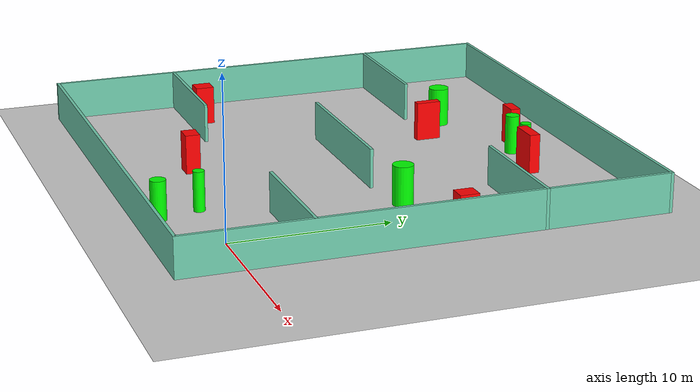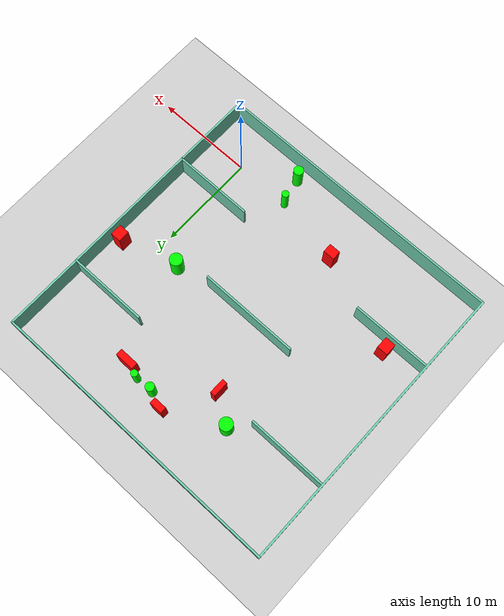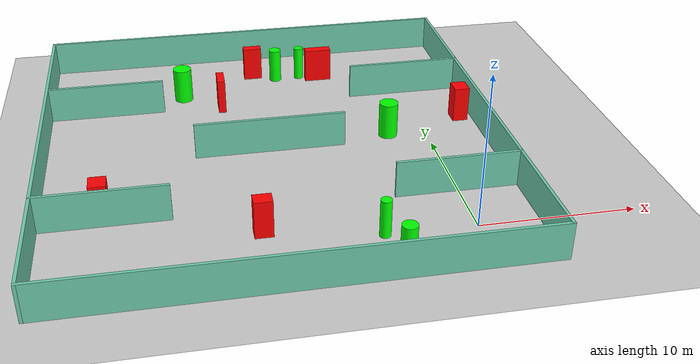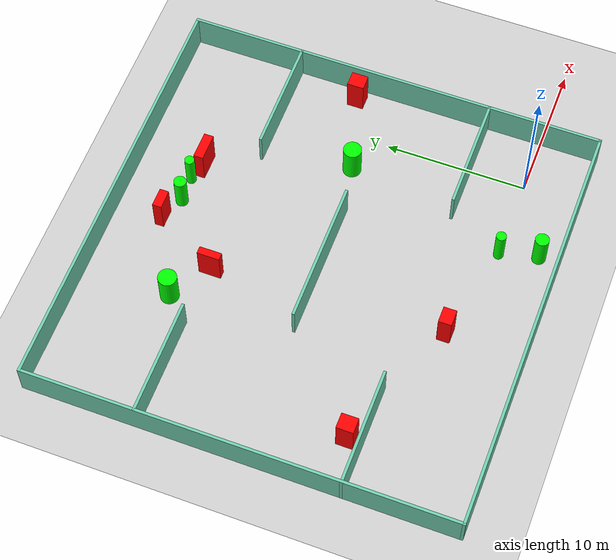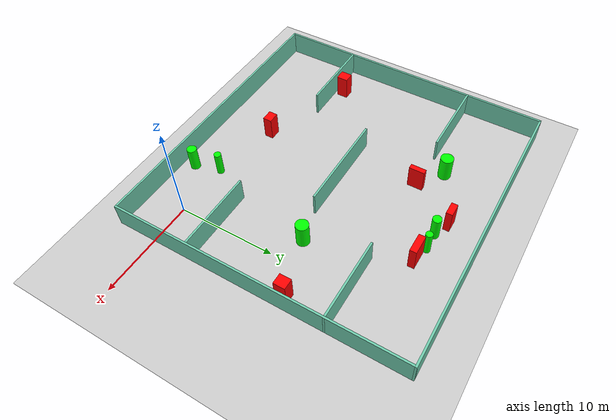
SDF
<sdf version="1.7">
 <world name="default">
  <light name="sun" type="directional">
   <pose>0 0 10 0 -0 0</pose>
   <diffuse>0.8 0.8 0.8 1</diffuse>
   <specular>0.2 0.2 0.2 1</specular>
   <attenuation>
    <range>1000</range>
    <constant>0.9</constant>
    <linear>0.01</linear>
    <quadratic>0.001</quadratic>
   </attenuation>
   <direction>-0.5 0.1 -0.9</direction>
   <spot><inner_angle>0</inner_angle><outer_angle>0</outer_angle><falloff>0</falloff></spot>
  </light>
  <model name="ground_plane">
   <static>1</static>
   <link name="link">
    <collision name="collision">
     <geometry><plane><normal>0 0 1</normal><size>100 100</size></plane></geometry>
     <surface>
      <contact><collide_bitmask>65535</collide_bitmask></contact>
      <friction><ode><mu>100</mu><mu2>50</mu2></ode></friction>
     </surface>
    </collision>
    <visual name="visual">
     <cast_shadows>0</cast_shadows>
     <geometry><plane><normal>0 0 1</normal><size>100 100</size></plane></geometry>
     <material>
      <script><uri>file://media/materials/scripts/gazebo.material</uri><name>Gazebo/Grey</name></script>
     </material>
    </visual>
   </link>
  </model>
  <gravity>0 0 -9.8</gravity>
  <magnetic_field>6e-06 2.3e-05 -4.2e-05</magnetic_field>
  <atmosphere type="adiabatic"/>
  <physics type="ode">
   <max_step_size>0.001</max_step_size>
   <real_time_factor>1</real_time_factor>
   <real_time_update_rate>1000</real_time_update_rate>
  </physics>
  <scene><ambient>0.4 0.4 0.4 1</ambient><background>0.7 0.7 0.7 1</background><shadows>1</shadows></scene>
  <spherical_coordinates>
   <surface_model>EARTH_WGS84</surface_model>
   <latitude_deg>0</latitude_deg>
   <longitude_deg>0</longitude_deg>
   <elevation>0</elevation>
   <heading_deg>0</heading_deg>
  </spherical_coordinates>
  <model name="my_base_walls">
   <link name="Wall_10">
    <collision name="Wall_10_Collision">
     <geometry><box><size>8.2 0.2 2.5</size></box></geometry>
     <pose>0 0 1.25 0 -0 0</pose>
    </collision>
    <visual name="Wall_10_Visual">
     <pose>0 0 1.25 0 -0 0</pose>
     <geometry><box><size>8.2 0.2 2.5</size></box></geometry>
     <material>
      <script><uri>file://media/materials/scripts/gazebo.material</uri><name>Gazebo/Grey</name></script>
      <ambient>0.435294 0.796078 0.67451 1</ambient>
     </material>
     <meta><layer>0</layer></meta>
    </visual>
    <pose>-11 -7 0 0 -0 0</pose>
   </link>
   <link name="Wall_12">
    <collision name="Wall_12_Collision">
     <geometry><box><size>8.2 0.2 2.5</size></box></geometry>
     <pose>0 0 1.25 0 -0 0</pose>
    </collision>
    <visual name="Wall_12_Visual">
     <pose>0 0 1.25 0 -0 0</pose>
     <geometry><box><size>8.2 0.2 2.5</size></box></geometry>
     <material>
      <script><uri>file://media/materials/scripts/gazebo.material</uri><name>Gazebo/Grey</name></script>
      <ambient>0.435294 0.796078 0.67451 1</ambient>
     </material>
     <meta><layer>0</layer></meta>
    </visual>
    <pose>-11 7 0 0 -0 0</pose>
   </link>
   <link name="Wall_14">
    <collision name="Wall_14_Collision">
     <geometry><box><size>8.2 0.2 2.5</size></box></geometry>
     <pose>0 0 1.25 0 -0 0</pose>
    </collision>
    <visual name="Wall_14_Visual">
     <pose>0 0 1.25 0 -0 0</pose>
     <geometry><box><size>8.2 0.2 2.5</size></box></geometry>
     <material>
      <script><uri>file://media/materials/scripts/gazebo.material</uri><name>Gazebo/Grey</name></script>
      <ambient>0.435294 0.796078 0.67451 1</ambient>
     </material>
     <meta><layer>0</layer></meta>
    </visual>
    <pose>11 7 0 0 -0 3.14159</pose>
   </link>
   <link name="Wall_16">
    <collision name="Wall_16_Collision">
     <geometry><box><size>10.2 0.2 2.5</size></box></geometry>
     <pose>0 0 1.25 0 -0 0</pose>
    </collision>
    <visual name="Wall_16_Visual">
     <pose>0 0 1.25 0 -0 0</pose>
     <geometry><box><size>10.2 0.2 2.5</size></box></geometry>
     <material>
      <script><uri>file://media/materials/scripts/gazebo.material</uri><name>Gazebo/Grey</name></script>
      <ambient>0.435294 0.796078 0.67451 1</ambient>
     </material>
     <meta><layer>0</layer></meta>
    </visual>
    <pose>0 0 0 0 -0 3.14159</pose>
   </link>
   <link name="Wall_2">
    <collision name="Wall_2_Collision">
     <geometry><box><size>30.2 0.2 2.5</size></box></geometry>
     <pose>0 0 1.25 0 -0 0</pose>
    </collision>
    <visual name="Wall_2_Visual">
     <pose>0 0 1.25 0 -0 0</pose>
     <geometry><box><size>30.2 0.2 2.5</size></box></geometry>
     <material>
      <script><uri>file://media/materials/scripts/gazebo.material</uri><name>Gazebo/Grey</name></script>
      <ambient>0.435294 0.796078 0.67451 1</ambient>
     </material>
     <meta><layer>0</layer></meta>
    </visual>
    <pose>0 -15 0 0 -0 3.14159</pose>
   </link>
   <link name="Wall_3">
    <collision name="Wall_3_Collision">
     <geometry><box><size>30.2 0.2 2.5</size></box></geometry>
     <pose>0 0 1.25 0 -0 0</pose>
    </collision>
    <visual name="Wall_3_Visual">
     <pose>0 0 1.25 0 -0 0</pose>
     <geometry><box><size>30.2 0.2 2.5</size></box></geometry>
     <material>
      <script><uri>file://media/materials/scripts/gazebo.material</uri><name>Gazebo/Grey</name></script>
      <ambient>0.435294 0.796078 0.67451 1</ambient>
     </material>
     <meta><layer>0</layer></meta>
    </visual>
    <pose>-15 0 0 0 -0 1.5708</pose>
   </link>
   <link name="Wall_4">
    <collision name="Wall_4_Collision">
     <geometry><box><size>30.2 0.2 2.5</size></box></geometry>
     <pose>0 0 1.25 0 -0 0</pose>
    </collision>
    <visual name="Wall_4_Visual">
     <pose>0 0 1.25 0 -0 0</pose>
     <geometry><box><size>30.2 0.2 2.5</size></box></geometry>
     <material>
      <script><uri>file://media/materials/scripts/gazebo.material</uri><name>Gazebo/Grey</name></script>
      <ambient>0.435294 0.796078 0.67451 1</ambient>
     </material>
     <meta><layer>0</layer></meta>
    </visual>
    <pose>0 15 0 0 -0 0</pose>
   </link>
   <link name="Wall_6">
    <collision name="Wall_6_Collision">
     <geometry><box><size>30.2 0.2 2.5</size></box></geometry>
     <pose>0 0 1.25 0 -0 0</pose>
    </collision>
    <visual name="Wall_6_Visual">
     <pose>0 0 1.25 0 -0 0</pose>
     <geometry><box><size>30.2 0.2 2.5</size></box></geometry>
     <material>
      <script><uri>file://media/materials/scripts/gazebo.material</uri><name>Gazebo/Grey</name></script>
      <ambient>0.435294 0.796078 0.67451 1</ambient>
     </material>
     <meta><layer>0</layer></meta>
    </visual>
    <pose>15 0 0 0 -0 1.5708</pose>
   </link>
   <link name="Wall_8">
    <collision name="Wall_8_Collision">
     <geometry><box><size>8.2 0.2 2.5</size></box></geometry>
     <pose>0 0 1.25 0 -0 0</pose>
    </collision>
    <visual name="Wall_8_Visual">
     <pose>0 0 1.25 0 -0 0</pose>
     <geometry><box><size>8.2 0.2 2.5</size></box></geometry>
     <material>
      <script><uri>file://media/materials/scripts/gazebo.material</uri><name>Gazebo/Grey</name></script>
      <ambient>0.435294 0.796078 0.67451 1</ambient>
     </material>
     <meta><layer>0</layer></meta>
    </visual>
    <pose>11 -7 0 0 -0 3.14159</pose>
   </link>
   <static>1</static>
   <pose>-11 11 0 0 -0 0</pose>
  </model>
  <model name="cylinder1">
   <static>1</static>
   <link name="link">
    <inertial>
     <mass>1</mass>
     <inertia><ixx>0.5</ixx><ixy>0</ixy><ixz>0</ixz><iyy>0.5</iyy><iyz>0</iyz><izz>1</izz></inertia>
    </inertial>
    <collision name="collision">
     <geometry><cylinder><radius>0.44075110235966025</radius><length>2.5</length></cylinder></geometry>
    </collision>
    <visual name="visual">
     <geometry><cylinder><radius>0.44075110235966025</radius><length>2.5</length></cylinder></geometry>
     <material>
      <ambient>0 1 0 1</ambient>
      <diffuse>0 1 0 1</diffuse>
      <specular>0.1 0.1 0.1 1</specular>
      <emissive>0 0 0 0</emissive>
     </material>
    </visual>
   </link>
   <pose>-9.217024435168844 21.87092231432564 1.25 0 0 0</pose>
  </model>
  <model name="cylinder2">
   <static>1</static>
   <link name="link">
    <inertial>
     <mass>1</mass>
     <inertia><ixx>0.5</ixx><ixy>0</ixy><ixz>0</ixz><iyy>0.5</iyy><iyz>0</iyz><izz>1</izz></inertia>
    </inertial>
    <collision name="collision">
     <geometry><cylinder><radius>0.6452833667445126</radius><length>2.5</length></cylinder></geometry>
    </collision>
    <visual name="visual">
     <geometry><cylinder><radius>0.6452833667445126</radius><length>2.5</length></cylinder></geometry>
     <material>
      <ambient>0 1 0 1</ambient>
      <diffuse>0 1 0 1</diffuse>
      <specular>0.1 0.1 0.1 1</specular>
      <emissive>0 0 0 0</emissive>
     </material>
    </visual>
   </link>
   <pose>-2.6637797139940567 11.753139032216989 1.25 0 0 0</pose>
  </model>
  <model name="cylinder3">
   <static>1</static>
   <link name="link">
    <inertial>
     <mass>1</mass>
     <inertia><ixx>0.5</ixx><ixy>0</ixy><ixz>0</ixz><iyy>0.5</iyy><iyz>0</iyz><izz>1</izz></inertia>
    </inertial>
    <collision name="collision">
     <geometry><cylinder><radius>0.485805875972384</radius><length>2.5</length></cylinder></geometry>
    </collision>
    <visual name="visual">
     <geometry><cylinder><radius>0.485805875972384</radius><length>2.5</length></cylinder></geometry>
     <material>
      <ambient>0 1 0 1</ambient>
      <diffuse>0 1 0 1</diffuse>
      <specular>0.1 0.1 0.1 1</specular>
      <emissive>0 0 0 0</emissive>
     </material>
    </visual>
   </link>
   <pose>-5.002679633633868 -2.578941779076842 1.25 0 0 0</pose>
  </model>
  <model name="cylinder4">
   <static>1</static>
   <link name="link">
    <inertial>
     <mass>1</mass>
     <inertia><ixx>0.5</ixx><ixy>0</ixy><ixz>0</ixz><iyy>0.5</iyy><iyz>0</iyz><izz>1</izz></inertia>
    </inertial>
    <collision name="collision">
     <geometry><cylinder><radius>0.3431839304746003</radius><length>2.5</length></cylinder></geometry>
    </collision>
    <visual name="visual">
     <geometry><cylinder><radius>0.3431839304746003</radius><length>2.5</length></cylinder></geometry>
     <material>
      <ambient>0 1 0 1</ambient>
      <diffuse>0 1 0 1</diffuse>
      <specular>0.1 0.1 0.1 1</specular>
      <emissive>0 0 0 0</emissive>
     </material>
    </visual>
   </link>
   <pose>-7.37153674992304 21.934263818643103 1.25 0 0 0</pose>
  </model>
  <model name="cylinder5">
   <static>1</static>
   <link name="link">
    <inertial>
     <mass>1</mass>
     <inertia><ixx>0.5</ixx><ixy>0</ixy><ixz>0</ixz><iyy>0.5</iyy><iyz>0</iyz><izz>1</izz></inertia>
    </inertial>
    <collision name="collision">
     <geometry><cylinder><radius>0.653817385798161</radius><length>2.5</length></cylinder></geometry>
    </collision>
    <visual name="visual">
     <geometry><cylinder><radius>0.653817385798161</radius><length>2.5</length></cylinder></geometry>
     <material>
      <ambient>0 1 0 1</ambient>
      <diffuse>0 1 0 1</diffuse>
      <specular>0.1 0.1 0.1 1</specular>
      <emissive>0 0 0 0</emissive>
     </material>
    </visual>
   </link>
   <pose>-16.418936055680287 19.757919014240198 1.25 0 0 0</pose>
  </model>
  <model name="cylinder6">
   <static>1</static>
   <link name="link">
    <inertial>
     <mass>1</mass>
     <inertia><ixx>0.5</ixx><ixy>0</ixy><ixz>0</ixz><iyy>0.5</iyy><iyz>0</iyz><izz>1</izz></inertia>
    </inertial>
    <collision name="collision">
     <geometry><cylinder><radius>0.3528573495639009</radius><length>2.5</length></cylinder></geometry>
    </collision>
    <visual name="visual">
     <geometry><cylinder><radius>0.3528573495639009</radius><length>2.5</length></cylinder></geometry>
     <material>
      <ambient>0 1 0 1</ambient>
      <diffuse>0 1 0 1</diffuse>
      <specular>0.1 0.1 0.1 1</specular>
      <emissive>0 0 0 0</emissive>
     </material>
    </visual>
   </link>
   <pose>-5.695519345308714 0.06627535835560838 1.25 0 0 0</pose>
  </model>
  <model name="box1">
   <static>1</static>
   <link name="link">
    <inertial>
     <mass>1</mass>
     <inertia><ixx>0.083</ixx><ixy>0</ixy><ixz>0</ixz><iyy>0.083</iyy><iyz>0</iyz><izz>0.083</izz></inertia>
    </inertial>
    <collision name="collision">
     <geometry><box><size>1.0636019911122212 1.1841653431173635 2.5</size></box></geometry>
    </collision>
    <visual name="visual">
     <geometry><box><size>1.0636019911122212 1.1841653431173635 2.5</size></box></geometry>
     <material>
      <ambient>1 0 0 1</ambient>
      <diffuse>1 0 0 1</diffuse>
      <specular>0.1 0.1 0.1 1</specular>
      <emissive>0 0 0 0</emissive>
     </material>
    </visual>
    <sensor name="my_contact" type="contact">
     <contact><collision>box_collision</collision><topic>__default_topic__</topic></contact>
    </sensor>
   </link>
   <pose>2.9612052840317062 13.395584824463135 1.25 0 0 0</pose>
  </model>
  <model name="box2">
   <static>1</static>
   <link name="link">
    <inertial>
     <mass>1</mass>
     <inertia><ixx>0.083</ixx><ixy>0</ixy><ixz>0</ixz><iyy>0.083</iyy><iyz>0</iyz><izz>0.083</izz></inertia>
    </inertial>
    <collision name="collision">
     <geometry><box><size>1.9341592800015595 0.6751396638789722 2.5</size></box></geometry>
    </collision>
    <visual name="visual">
     <geometry><box><size>1.9341592800015595 0.6751396638789722 2.5</size></box></geometry>
     <material>
      <ambient>1 0 0 1</ambient>
      <diffuse>1 0 0 1</diffuse>
      <specular>0.1 0.1 0.1 1</specular>
      <emissive>0 0 0 0</emissive>
     </material>
    </visual>
    <sensor name="my_contact" type="contact">
     <contact><collision>box_collision</collision><topic>__default_topic__</topic></contact>
    </sensor>
   </link>
   <pose>-5.971658319828757 21.46690187642699 1.25 0 0 0</pose>
  </model>
  <model name="box3">
   <static>1</static>
   <link name="link">
    <inertial>
     <mass>1</mass>
     <inertia><ixx>0.083</ixx><ixy>0</ixy><ixz>0</ixz><iyy>0.083</iyy><iyz>0</iyz><izz>0.083</izz></inertia>
    </inertial>
    <collision name="collision">
     <geometry><box><size>1.3374312032380389 0.643054521240565 2.5</size></box></geometry>
    </collision>
    <visual name="visual">
     <geometry><box><size>1.3374312032380389 0.643054521240565 2.5</size></box></geometry>
     <material>
      <ambient>1 0 0 1</ambient>
      <diffuse>1 0 0 1</diffuse>
      <specular>0.1 0.1 0.1 1</specular>
      <emissive>0 0 0 0</emissive>
     </material>
    </visual>
    <sensor name="my_contact" type="contact">
     <contact><collision>box_collision</collision><topic>__default_topic__</topic></contact>
    </sensor>
   </link>
   <pose>-10.914854200738432 22.57853766619041 1.25 0 0 0</pose>
  </model>
  <model name="box4">
   <static>1</static>
   <link name="link">
    <inertial>
     <mass>1</mass>
     <inertia><ixx>0.083</ixx><ixy>0</ixy><ixz>0</ixz><iyy>0.083</iyy><iyz>0</iyz><izz>0.083</izz></inertia>
    </inertial>
    <collision name="collision">
     <geometry><box><size>1.0897838195086211 1.1869658088240738 2.5</size></box></geometry>
    </collision>
    <visual name="visual">
     <geometry><box><size>1.0897838195086211 1.1869658088240738 2.5</size></box></geometry>
     <material>
      <ambient>1 0 0 1</ambient>
      <diffuse>1 0 0 1</diffuse>
      <specular>0.1 0.1 0.1 1</specular>
      <emissive>0 0 0 0</emissive>
     </material>
    </visual>
    <sensor name="my_contact" type="contact">
     <contact><collision>box_collision</collision><topic>__default_topic__</topic></contact>
    </sensor>
   </link>
   <pose>-22.169497988858982 5.008995555669193 1.25 0 0 0</pose>
  </model>
  <model name="box5">
   <static>1</static>
   <link name="link">
    <inertial>
     <mass>1</mass>
     <inertia><ixx>0.083</ixx><ixy>0</ixy><ixz>0</ixz><iyy>0.083</iyy><iyz>0</iyz><izz>0.083</izz></inertia>
    </inertial>
    <collision name="collision">
     <geometry><box><size>1.1624397130710924 0.9196922758776275 2.5</size></box></geometry>
    </collision>
    <visual name="visual">
     <geometry><box><size>1.1624397130710924 0.9196922758776275 2.5</size></box></geometry>
     <material>
      <ambient>1 0 0 1</ambient>
      <diffuse>1 0 0 1</diffuse>
      <specular>0.1 0.1 0.1 1</specular>
      <emissive>0 0 0 0</emissive>
     </material>
    </visual>
    <sensor name="my_contact" type="contact">
     <contact><collision>box_collision</collision><topic>__default_topic__</topic></contact>
    </sensor>
   </link>
   <pose>-12.71403025367206 1.5136559393545932 1.25 0 0 0</pose>
  </model>
  <model name="box6">
   <static>1</static>
   <link name="link">
    <inertial>
     <mass>1</mass>
     <inertia><ixx>0.083</ixx><ixy>0</ixy><ixz>0</ixz><iyy>0.083</iyy><iyz>0</iyz><izz>0.083</izz></inertia>
    </inertial>
    <collision name="collision">
     <geometry><box><size>0.521592154365886 1.5829580632903741 2.5</size></box></geometry>
    </collision>
    <visual name="visual">
     <geometry><box><size>0.521592154365886 1.5829580632903741 2.5</size></box></geometry>
     <material>
      <ambient>1 0 0 1</ambient>
      <diffuse>1 0 0 1</diffuse>
      <specular>0.1 0.1 0.1 1</specular>
      <emissive>0 0 0 0</emissive>
     </material>
    </visual>
    <sensor name="my_contact" type="contact">
     <contact><collision>box_collision</collision><topic>__default_topic__</topic></contact>
    </sensor>
   </link>
   <pose>-13.749447023785699 17.848116884348187 1.25 0 0 0</pose>
  </model>
 </world>
</sdf>
